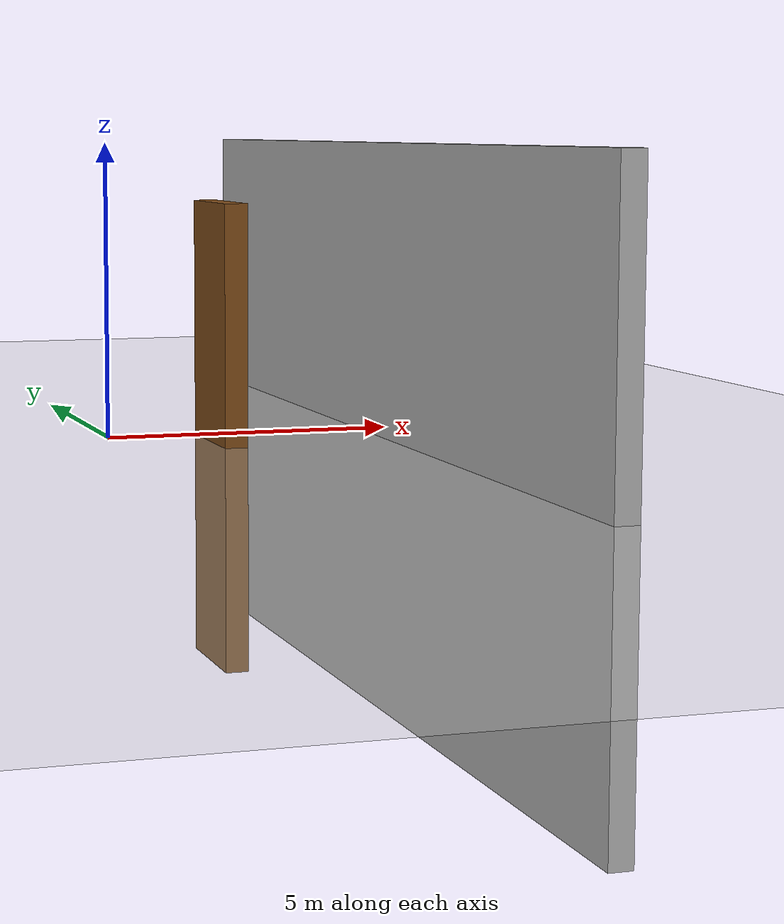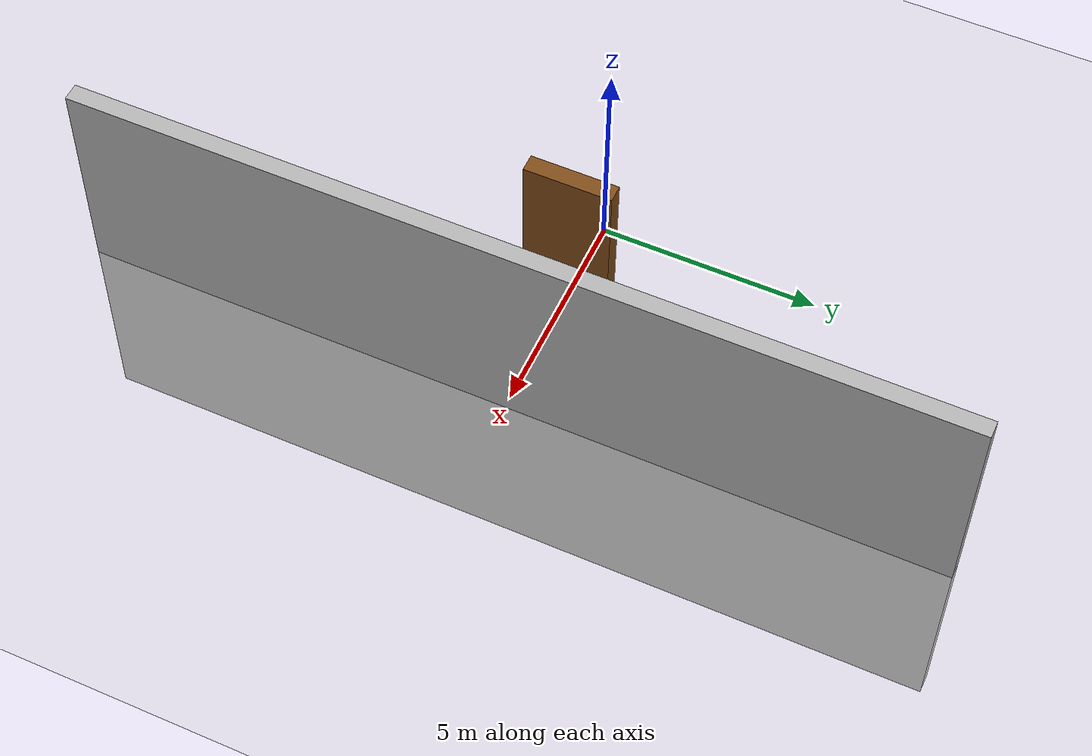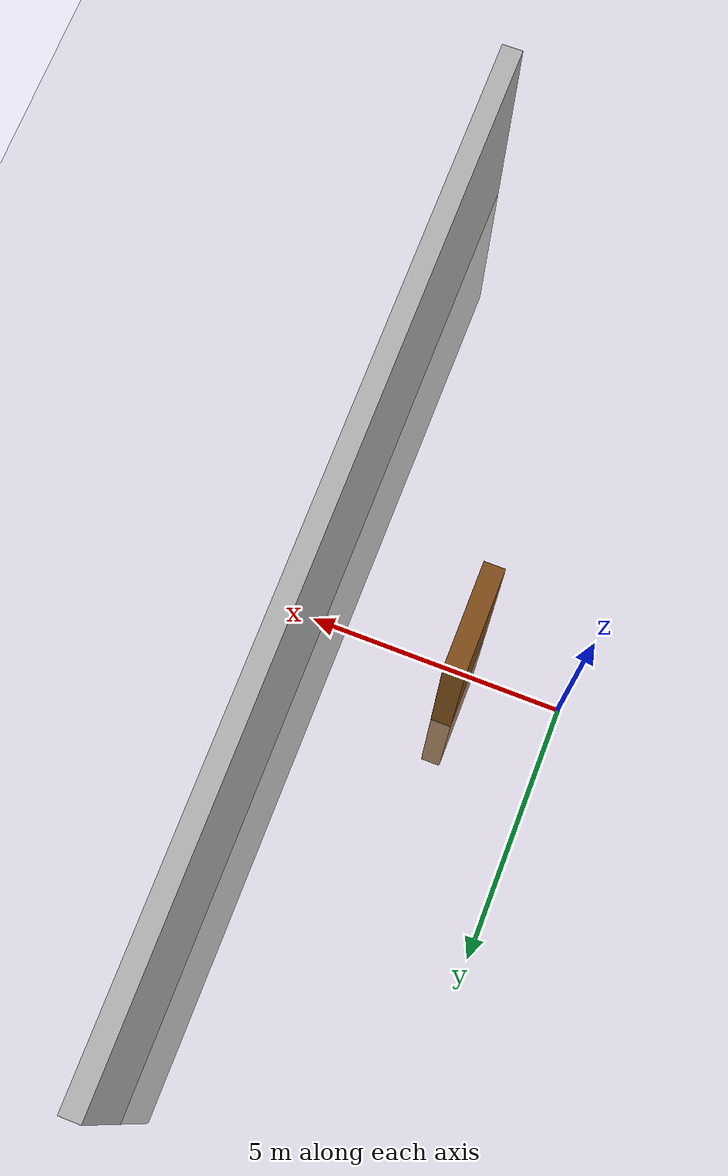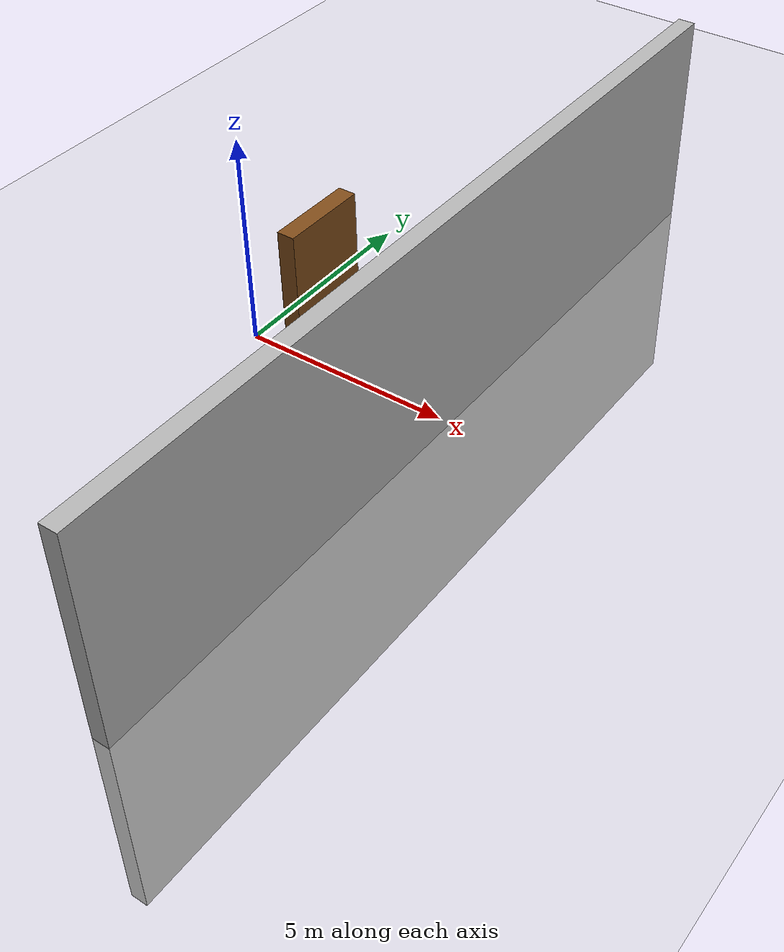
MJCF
<mujoco>
  <option gravity="0 0 -9.81" />
  <worldbody>
    <body name="object_2" pos="5 0 0">
      <geom type="box" size="0.2 10 5" rgba="0.7 0.7 0.7 1" friction="0 0 0" />
    </body>
    <body name="object_3" pos="0 0 -0.1">
      <geom type="plane" size="30 30 0.1" rgba="0.8 0.8 0.8 1" friction="1 1 1" />
    </body>
    <body name="object_1" pos="2 0 0">
      <geom type="box" size="0.2 1 4" rgba="0.5 0.3 0.1 1" friction="0.6 0.6 0.6" />
      <joint name="object_1_joint" type="free" />
    </body>
  </worldbody>
</mujoco>
